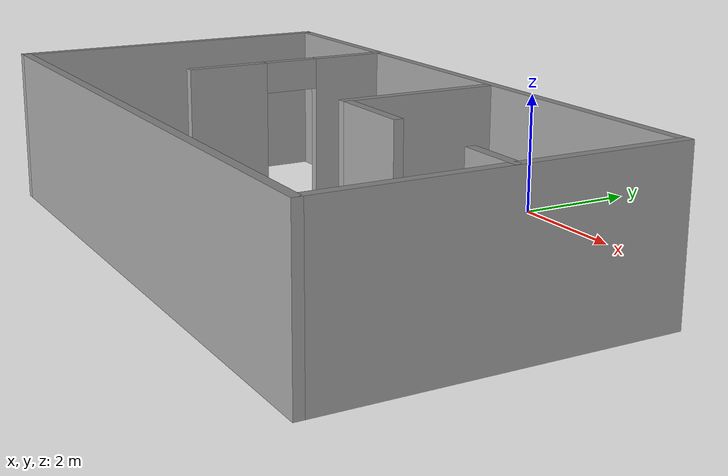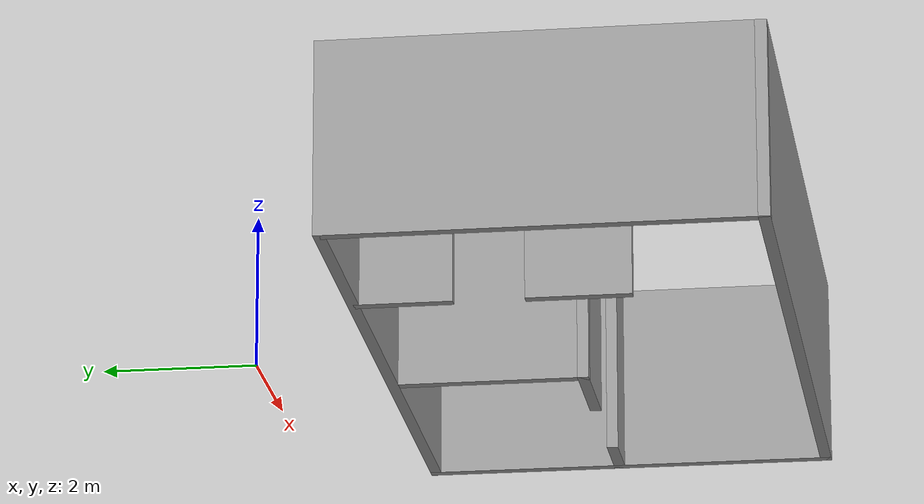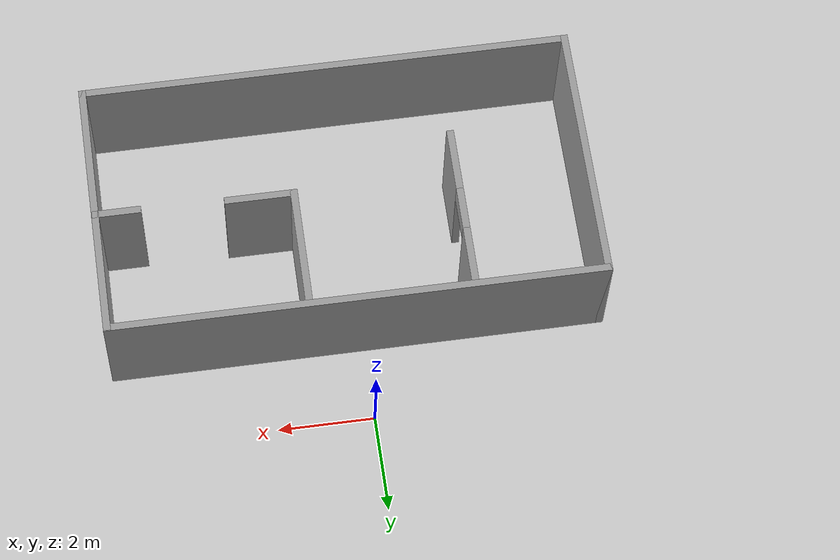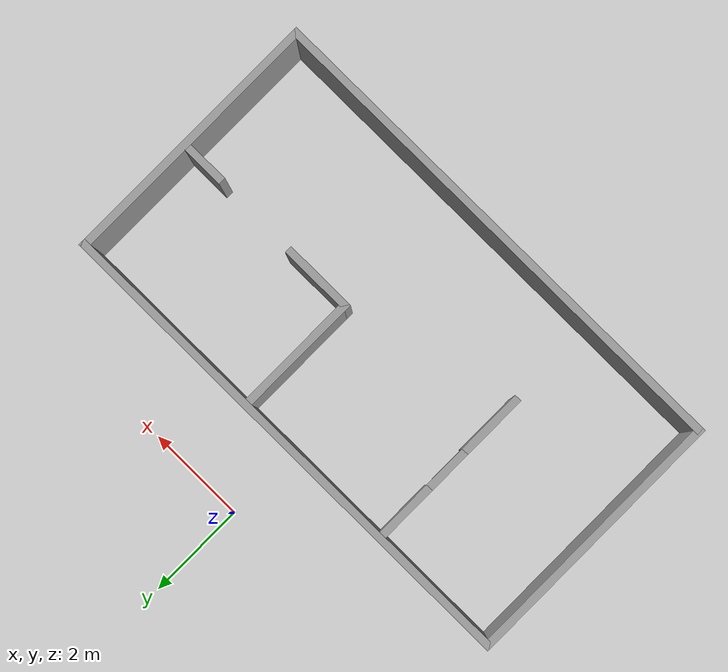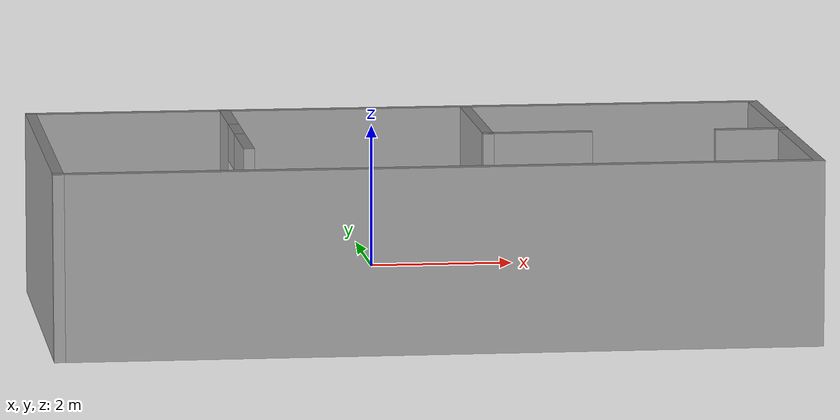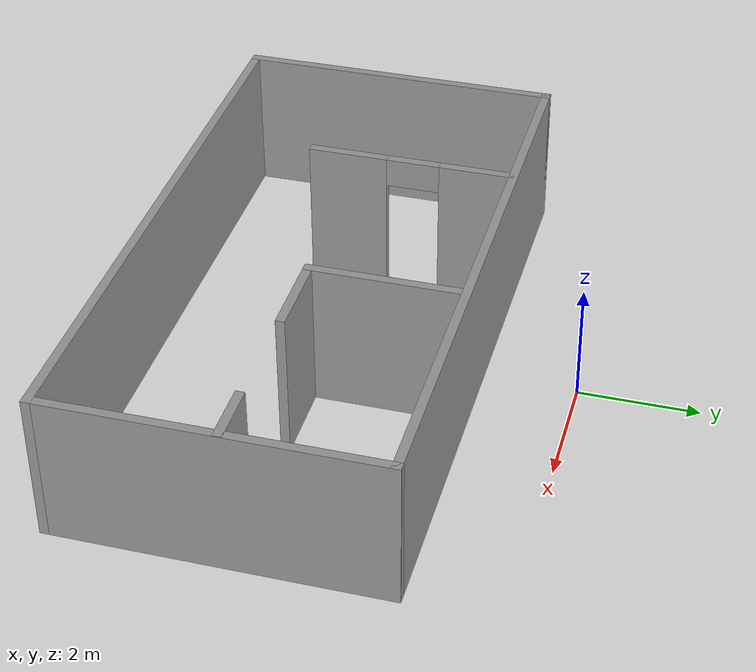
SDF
<?xml version='1.0'?>
<sdf version='1.7'>
  <model name='sample_building1'>
    <pose>0.13 -3.5175 0 0 -0 0</pose>
    <link name='Wall_0'>
      <collision name='Wall_0_Collision'>
        <geometry>
          <box>
            <size>10.25 0.15 2.5</size>
          </box>
        </geometry>
        <pose>0 0 1.25 0 -0 0</pose>
      </collision>
      <visual name='Wall_0_Visual'>
        <pose>0 0 1.25 0 -0 0</pose>
        <geometry>
          <box>
            <size>10.25 0.15 2.5</size>
          </box>
        </geometry>
        <material>
          <script>
            <uri>file://media/materials/scripts/gazebo.material</uri>
            <name>Gazebo/Grey</name>
          </script>
          <ambient>1 1 1 1</ambient>
        </material>
        <meta>
          <layer>0</layer>
        </meta>
      </visual>
      <pose>0 1.9075 0 0 -0 0</pose>
    </link>
    <link name='Wall_1'>
      <collision name='Wall_1_Collision'>
        <geometry>
          <box>
            <size>5.5 0.15 2.5</size>
          </box>
        </geometry>
        <pose>0 0 1.25 0 -0 0</pose>
      </collision>
      <visual name='Wall_1_Visual'>
        <pose>0 0 1.25 0 -0 0</pose>
        <geometry>
          <box>
            <size>5.5 0.15 2.5</size>
          </box>
        </geometry>
        <material>
          <script>
            <uri>file://media/materials/scripts/gazebo.material</uri>
            <name>Gazebo/Grey</name>
          </script>
          <ambient>1 1 1 1</ambient>
        </material>
        <meta>
          <layer>0</layer>
        </meta>
      </visual>
      <pose>5.05 -0.7675 0 0 -0 -1.5708</pose>
    </link>
    <link name='Wall_10'>
      <pose>-2.35718 0.162808 0 0 -0 -1.5708</pose>
      <visual name='Wall_10_Visual_0'>
        <pose>-1.121 0 1.25 0 -0 0</pose>
        <geometry>
          <box>
            <size>1.258 0.15 2.5</size>
          </box>
        </geometry>
        <material>
          <script>
            <uri>file://media/materials/scripts/gazebo.material</uri>
            <name>Gazebo/Grey</name>
          </script>
          <ambient>1 1 1 1</ambient>
        </material>
        <meta>
          <layer>0</layer>
        </meta>
      </visual>
      <collision name='Wall_10_Collision_0'>
        <geometry>
          <box>
            <size>1.258 0.15 2.5</size>
          </box>
        </geometry>
        <pose>-1.121 0 1.25 0 -0 0</pose>
      </collision>
      <visual name='Wall_10_Visual_1'>
        <pose>1.079 0 1.25 0 -0 0</pose>
        <geometry>
          <box>
            <size>1.342 0.15 2.5</size>
          </box>
        </geometry>
        <material>
          <script>
            <uri>file://media/materials/scripts/gazebo.material</uri>
            <name>Gazebo/Grey</name>
          </script>
          <ambient>1 1 1 1</ambient>
        </material>
        <meta>
          <layer>0</layer>
        </meta>
      </visual>
      <collision name='Wall_10_Collision_1'>
        <geometry>
          <box>
            <size>1.342 0.15 2.5</size>
          </box>
        </geometry>
        <pose>1.079 0 1.25 0 -0 0</pose>
      </collision>
      <visual name='Wall_10_Visual_2'>
        <pose>-0.042 0 2.25 0 -0 0</pose>
        <geometry>
          <box>
            <size>0.9 0.15 0.5</size>
          </box>
        </geometry>
        <material>
          <script>
            <uri>file://media/materials/scripts/gazebo.material</uri>
            <name>Gazebo/Grey</name>
          </script>
          <ambient>1 1 1 1</ambient>
        </material>
        <meta>
          <layer>0</layer>
        </meta>
      </visual>
      <collision name='Wall_10_Collision_2'>
        <geometry>
          <box>
            <size>0.9 0.15 0.5</size>
          </box>
        </geometry>
        <pose>-0.042 0 2.25 0 -0 0</pose>
      </collision>
    </link>
    <link name='Wall_2'>
      <collision name='Wall_2_Collision'>
        <geometry>
          <box>
            <size>10.25 0.15 2.5</size>
          </box>
        </geometry>
        <pose>0 0 1.25 0 -0 0</pose>
      </collision>
      <visual name='Wall_2_Visual'>
        <pose>0 0 1.25 0 -0 0</pose>
        <geometry>
          <box>
            <size>10.25 0.15 2.5</size>
          </box>
        </geometry>
        <material>
          <script>
            <uri>file://media/materials/scripts/gazebo.material</uri>
            <name>Gazebo/Grey</name>
          </script>
          <ambient>1 1 1 1</ambient>
        </material>
        <meta>
          <layer>0</layer>
        </meta>
      </visual>
      <pose>0 -3.4425 0 0 -0 3.14159</pose>
    </link>
    <link name='Wall_3'>
      <collision name='Wall_3_Collision'>
        <geometry>
          <box>
            <size>5.5 0.15 2.5</size>
          </box>
        </geometry>
        <pose>0 0 1.25 0 -0 0</pose>
      </collision>
      <visual name='Wall_3_Visual'>
        <pose>0 0 1.25 0 -0 0</pose>
        <geometry>
          <box>
            <size>5.5 0.15 2.5</size>
          </box>
        </geometry>
        <material>
          <script>
            <uri>file://media/materials/scripts/gazebo.material</uri>
            <name>Gazebo/Grey</name>
          </script>
          <ambient>1 1 1 1</ambient>
        </material>
        <meta>
          <layer>0</layer>
        </meta>
      </visual>
      <pose>-5.05 -0.7675 0 0 -0 1.5708</pose>
    </link>
    <link name='Wall_5'>
      <collision name='Wall_5_Collision'>
        <geometry>
          <box>
            <size>1 0.15 2.5</size>
          </box>
        </geometry>
        <pose>0 0 1.25 0 -0 0</pose>
      </collision>
      <visual name='Wall_5_Visual'>
        <pose>0 0 1.25 0 -0 0</pose>
        <geometry>
          <box>
            <size>1 0.15 2.5</size>
          </box>
        </geometry>
        <material>
          <script>
            <uri>file://media/materials/scripts/gazebo.material</uri>
            <name>Gazebo/Grey</name>
          </script>
          <ambient>1 1 1 1</ambient>
        </material>
        <meta>
          <layer>0</layer>
        </meta>
      </visual>
      <pose>4.61232 -0.623191 0 0 -0 3.14159</pose>
    </link>
    <link name='Wall_7'>
      <collision name='Wall_7_Collision'>
        <geometry>
          <box>
            <size>1.5 0.15 2.5</size>
          </box>
        </geometry>
        <pose>0 0 1.25 0 -0 0</pose>
      </collision>
      <visual name='Wall_7_Visual'>
        <pose>0 0 1.25 0 -0 0</pose>
        <geometry>
          <box>
            <size>1.5 0.15 2.5</size>
          </box>
        </geometry>
        <material>
          <script>
            <uri>file://media/materials/scripts/gazebo.material</uri>
            <name>Gazebo/Grey</name>
          </script>
          <ambient>1 1 1 1</ambient>
        </material>
        <meta>
          <layer>0</layer>
        </meta>
      </visual>
      <pose>1.67132 -0.588692 0 0 -0 3.14159</pose>
    </link>
    <link name='Wall_8'>
      <collision name='Wall_8_Collision'>
        <geometry>
          <box>
            <size>2.5 0.15 2.5</size>
          </box>
        </geometry>
        <pose>0 0 1.25 0 -0 0</pose>
      </collision>
      <visual name='Wall_8_Visual'>
        <pose>0 0 1.25 0 -0 0</pose>
        <geometry>
          <box>
            <size>2.5 0.15 2.5</size>
          </box>
        </geometry>
        <material>
          <script>
            <uri>file://media/materials/scripts/gazebo.material</uri>
            <name>Gazebo/Grey</name>
          </script>
          <ambient>1 1 1 1</ambient>
        </material>
        <meta>
          <layer>0</layer>
        </meta>
      </visual>
      <pose>0.996318 0.586308 0 0 -0 1.5708</pose>
    </link>
    <static>1</static>
  </model>
</sdf>
